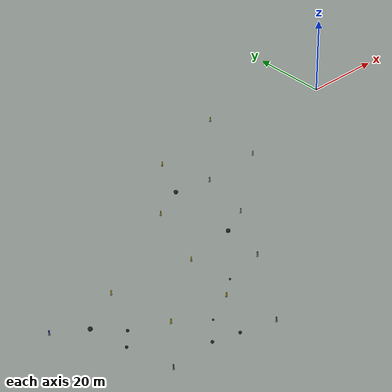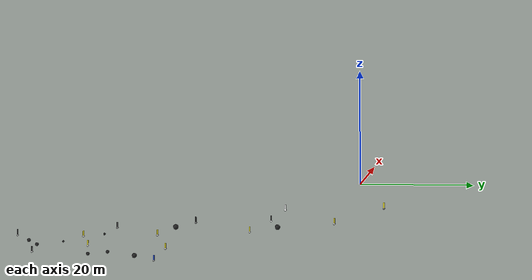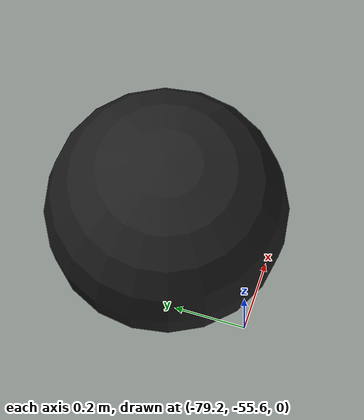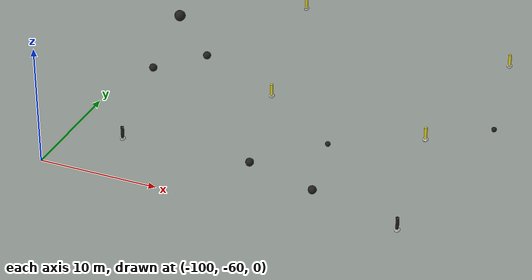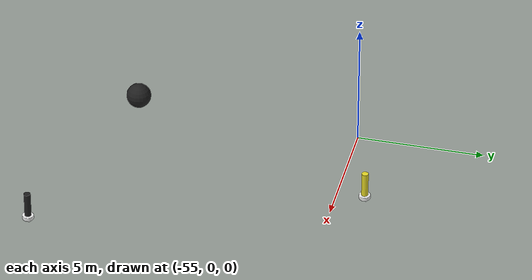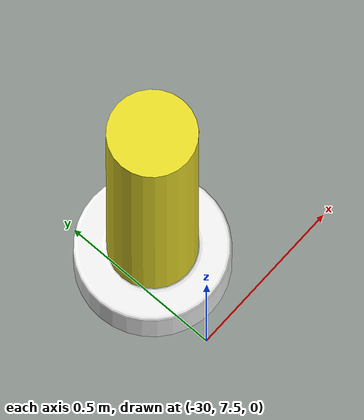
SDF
<?xml version="1.0"?>
<!-- Model for the VRX navigation course -->
<sdf version="1.6">
  <model name="vrx_navigation_course">

    <!-- Starboard_border -->
    <include>
      <name>red_bound_0</name>
      <pose>-29.8874 7.80274 0 0 -0 0</pose>
      <uri>model://yellow_totem</uri>
    </include>

    <include>
      <name>red_bound_1</name>
      <pose>-51.4227 1.0515 0 0 -0 0</pose>
      <uri>model://yellow_totem</uri>
    </include>

    <include>
      <name>red_bound_2</name>
      <pose>-64.574 -13.7242 0 0 -0 0</pose>
      <uri>model://yellow_totem</uri>
    </include>

    <include>
      <name>red_bound_3</name>
      <pose>-70.5798 -30.9289 0 0 -0 0</pose>
      <uri>model://yellow_totem</uri>
    </include>

    <include>
      <name>red_bound_4</name>
      <pose>-73.2084 -44.9953 0 0 -0 0</pose>
      <uri>model://yellow_totem</uri>
    </include>

    <include>
      <name>red_bound_5</name>
      <pose>-87.3051 -43.4804 0 0 -0 0</pose>
      <uri>model://yellow_totem</uri>
    </include>

    <include>
      <name>red_bound_6</name>
      <pose>-90.539 -28.0283 0 0 -0 0</pose>
      <uri>model://yellow_totem</uri>
    </include>

    <!-- Port_border -->
    <include>
      <name>green_bound_0</name>
      <pose>-32.2914 -10.0761 -0.2 0 -0 0</pose>
      <uri>model://surmark46104</uri>
    </include>

    <include>
      <name>green_bound_1</name>
      <pose>-47.3915 -11.2422 -0.2 0 -0 0</pose>
      <uri>model://black_totem</uri>
    </include>

    <include>
      <name>green_bound_2</name>
      <pose>-50.4509 -25.1164 -0.2 0 -0 0</pose>
      <uri>model://black_totem</uri>
    </include>

    <include>
      <name>green_bound_3</name>
      <pose>-58.7734 -39.351 -0.2 0 -0 0</pose>
      <uri>model://black_totem</uri>
    </include>

    <include>
      <name>green_bound_4</name>
      <pose>-70.9557 -57.7238 -0.2 0 -0 0</pose>
      <uri>model://black_totem</uri>
    </include>

    <include>
      <name>green_bound_5</name>
      <pose>-95.8278 -54.0979 -0.2 0 -0 0</pose>
      <uri>model://black_totem</uri>
    </include>

    <include>
      <name>green_bound_6</name>
      <pose>-107.643 -29.1729 -0.2 0 -0 0</pose>
      <uri>model://blue_totem</uri>
    </include>

    <!-- Obstacles -->
    <include>
      <name>obstacle_1</name>
      <pose>-57.283 -28.3719 -0.2 0 -0 0</pose>
      <uri>model://polyform_a7</uri>
    </include>

    <include>
      <name>obstacle_2</name>
      <pose>-68.6471 -41.2087 -0.2 0 -0 0</pose>
      <uri>model://polyform_a3</uri>
    </include>

    <include>
      <name>obstacle_3</name>
      <pose>-80.2333 -48.5559 -0.2 0 -0 0</pose>
      <uri>model://polyform_a3</uri>
    </include>

    <include>
      <name>obstacle_4</name>
      <pose>-78.842 -55.2626 -0.2 0 -0 0</pose>
      <uri>model://polyform_a5</uri>
    </include>

    <include>
      <name>obstacle_5</name>
      <pose>-84.9105 -53.4974 -0.2 0 -0 0</pose>
      <uri>model://polyform_a5</uri>
    </include>

    <include>
      <name>obstacle_6</name>
      <pose>-98.5759 -42.8883 -0.2 0 -0 0</pose>
      <uri>model://polyform_a5</uri>
    </include>

    <include>
      <name>obstacle_7</name>
      <pose>-95.2334 -39.1624 -0.2 0 -0 0</pose>
      <uri>model://polyform_a5</uri>
    </include>

    <include>
      <name>obstacle_8</name>
      <pose>-100.506 -33.524 -0.2 0 -0 0</pose>
      <uri>model://polyform_a7</uri>
    </include>

    <include>
      <name>obstacle_9</name>
      <pose>-56.0734 -9.21053 -0.2 0 -0 0</pose>
      <uri>model://polyform_a7</uri>
    </include>
  </model>
</sdf>

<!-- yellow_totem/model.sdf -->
<sdf version="1.6">
  <model name="yellow_totem">
    <link name="link">
      <inertial>
        <pose>0 0 -2 0 0 0</pose>
        <!-- Mass determined based on buoyancy geometry so object
             floats at mid-point of sphere -->
        <mass>25</mass>
        <!-- Mark only - based on cylinder -->
        <inertia>
          <ixx>1.0</ixx>
          <ixy>0</ixy>
          <ixz>0</ixz>
          <iyy>1.0</iyy>
          <iyz>0</iyz>
          <izz>0.1</izz>
        </inertia>
      </inertial>
      <collision name="collision_inner">
        <pose>0 0 0.367 0 0 0</pose>
        <geometry>
          <cylinder>
            <radius>0.13</radius>
            <length>1.25</length>
          </cylinder>
        </geometry>
      </collision>
      <collision name="collision_outer">
        <pose>0 0 -0.075 0 0 0</pose>
        <geometry>
          <cylinder>
            <radius>0.23</radius>
            <length>0.16</length>
          </cylinder>
        </geometry>
      </collision>
      <visual name="visual">
        <geometry>
          <mesh><uri>model://surmark46104/mesh/surmark46104.dae</uri></mesh>
        </geometry>
        <material>
          <script>
            <uri>file://media/materials/scripts/gazebo.material</uri>
            <name>Gazebo/White</name>
          </script>
        </material>
      </visual>
      <visual name="cover_visual">
        <pose>0 0 0.492 0 0 0</pose>
        <geometry>
          <cylinder>
            <radius>0.131</radius>
            <length>1</length>
          </cylinder>
        </geometry>
        <material>
          <script>
            <uri>file://media/materials/scripts/gazebo.material</uri>
            <name>Gazebo/Yellow</name>
          </script>
        </material>
      </visual>
    </link>
    <plugin name="BuoyancyPlugin" filename="libbuoyancy_gazebo_plugin.so">
      <wave_model>ocean_waves</wave_model>
      <fluid_density>1000</fluid_density>
      <fluid_level>0.0</fluid_level>
      <linear_drag>25.0</linear_drag>
      <angular_drag>2.0</angular_drag>
      <buoyancy name="buoyancy_sphere">
        <link_name>link</link_name>
        <pose>0 0 -0.08 0 0 0</pose>
        <geometry>
          <sphere>
            <radius>0.23</radius>
          </sphere>
        </geometry>
      </buoyancy>
    </plugin>
  </model>
</sdf>

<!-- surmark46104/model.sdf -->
<sdf version="1.6">
  <model name="surmark46104">
    <link name="link">
      <inertial>
        <pose>0 0 -2 0 0 0</pose>
        <!-- Mass determined based on buoyancy geometry so object
             floats at mid-point of sphere -->
        <mass>25</mass>
        <!-- Mark only - based on cylinder -->
        <inertia>
          <ixx>1.0</ixx>
          <ixy>0</ixy>
          <ixz>0</ixz>
          <iyy>1.0</iyy>
          <iyz>0</iyz>
          <izz>0.1</izz>
        </inertia>
      </inertial>
      <collision name="collision_inner">
        <pose>0 0 0.367 0 0 0</pose>
        <geometry>
          <cylinder>
            <radius>0.13</radius>
            <length>1.25</length>
          </cylinder>
        </geometry>
      </collision>
      <collision name="collision_outer">
        <pose>0 0 -0.075 0 0 0</pose>
        <geometry>
          <cylinder>
            <radius>0.23</radius>
            <length>0.16</length>
          </cylinder>
        </geometry>
      </collision>
      <visual name="visual">
        <geometry>
	        <mesh><uri>model://surmark46104/mesh/surmark46104.dae</uri></mesh>
        </geometry>
        <material>
          <script>
            <uri>file://media/materials/scripts/gazebo.material</uri>
            <name>Gazebo/White</name>
          </script>
        </material>
      </visual>
    </link>
    <plugin name="BuoyancyPlugin" filename="libbuoyancy_gazebo_plugin.so">
      <wave_model>ocean_waves</wave_model>
      <fluid_density>1000</fluid_density>
      <fluid_level>0.0</fluid_level>
      <linear_drag>25.0</linear_drag>
      <angular_drag>2.0</angular_drag>
      <buoyancy name="buoyancy_sphere">
        <link_name>link</link_name>
        <pose>0 0 -0.08 0 0 0</pose>
        <geometry>
          <sphere>
            <radius>0.23</radius>
          </sphere>
        </geometry>
      </buoyancy>
    </plugin>
  </model>
</sdf>

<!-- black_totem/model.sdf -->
<sdf version="1.6">
  <model name="black_totem">
    <link name="link">
      <inertial>
        <pose>0 0 -2 0 0 0</pose>
        <!-- Mass determined based on buoyancy geometry so object
             floats at mid-point of sphere -->
        <mass>25</mass>
        <!-- Mark only - based on cylinder -->
        <inertia>
          <ixx>1.0</ixx>
          <ixy>0</ixy>
          <ixz>0</ixz>
          <iyy>1.0</iyy>
          <iyz>0</iyz>
          <izz>0.1</izz>
        </inertia>
      </inertial>
      <collision name="collision_inner">
        <pose>0 0 0.367 0 0 0</pose>
        <geometry>
          <cylinder>
            <radius>0.13</radius>
            <length>1.25</length>
          </cylinder>
        </geometry>
      </collision>
      <collision name="collision_outer">
        <pose>0 0 -0.075 0 0 0</pose>
        <geometry>
          <cylinder>
            <radius>0.23</radius>
            <length>0.16</length>
          </cylinder>
        </geometry>
      </collision>
      <visual name="visual">
        <geometry>
          <mesh><uri>model://surmark46104/mesh/surmark46104.dae</uri></mesh>
        </geometry>
        <material>
          <script>
            <uri>file://media/materials/scripts/gazebo.material</uri>
            <name>Gazebo/White</name>
          </script>
        </material>
      </visual>
      <visual name="cover_visual">
        <pose>0 0 0.492 0 0 0</pose>
        <geometry>
          <cylinder>
            <radius>0.131</radius>
            <length>1</length>
          </cylinder>
        </geometry>
        <material>
          <script>
            <uri>file://media/materials/scripts/gazebo.material</uri>
            <name>Gazebo/Black</name>
          </script>
        </material>
      </visual>
    </link>
    <plugin name="BuoyancyPlugin" filename="libbuoyancy_gazebo_plugin.so">
      <wave_model>ocean_waves</wave_model>
      <fluid_density>1000</fluid_density>
      <fluid_level>0.0</fluid_level>
      <linear_drag>25.0</linear_drag>
      <angular_drag>2.0</angular_drag>
      <buoyancy name="buoyancy_sphere">
        <link_name>link</link_name>
        <pose>0 0 -0.08 0 0 0</pose>
        <geometry>
          <sphere>
            <radius>0.23</radius>
          </sphere>
        </geometry>
      </buoyancy>
    </plugin>
  </model>
</sdf>

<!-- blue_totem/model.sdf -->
<sdf version="1.6">
  <model name="blue_totem">
    <link name="link">
      <inertial>
        <pose>0 0 -2 0 0 0</pose>
        <!-- Mass determined based on buoyancy geometry so object
             floats at mid-point of sphere -->
        <mass>25</mass>
        <!-- Mark only - based on cylinder -->
        <inertia>
          <ixx>1.0</ixx>
          <ixy>0</ixy>
          <ixz>0</ixz>
          <iyy>1.0</iyy>
          <iyz>0</iyz>
          <izz>0.1</izz>
        </inertia>
      </inertial>
      <collision name="collision_inner">
        <pose>0 0 0.367 0 0 0</pose>
        <geometry>
          <cylinder>
            <radius>0.13</radius>
            <length>1.25</length>
          </cylinder>
        </geometry>
      </collision>
      <collision name="collision_outer">
        <pose>0 0 -0.075 0 0 0</pose>
        <geometry>
          <cylinder>
            <radius>0.23</radius>
            <length>0.16</length>
          </cylinder>
        </geometry>
      </collision>
      <visual name="visual">
        <geometry>
          <mesh><uri>model://surmark46104/mesh/surmark46104.dae</uri></mesh>
        </geometry>
        <material>
          <script>
            <uri>file://media/materials/scripts/gazebo.material</uri>
            <name>Gazebo/White</name>
          </script>
        </material>
      </visual>
      <visual name="cover_visual">
        <pose>0 0 0.492 0 0 0</pose>
        <geometry>
          <cylinder>
            <radius>0.131</radius>
            <length>1</length>
          </cylinder>
        </geometry>
        <material>
          <script>
            <uri>file://media/materials/scripts/gazebo.material</uri>
            <name>Gazebo/Blue</name>
          </script>
        </material>
      </visual>
    </link>
    <plugin name="BuoyancyPlugin" filename="libbuoyancy_gazebo_plugin.so">
      <wave_model>ocean_waves</wave_model>
      <fluid_density>1000</fluid_density>
      <fluid_level>0.0</fluid_level>
      <linear_drag>25.0</linear_drag>
      <angular_drag>2.0</angular_drag>
      <buoyancy name="buoyancy_sphere">
        <link_name>link</link_name>
        <pose>0 0 -0.08 0 0 0</pose>
        <geometry>
          <sphere>
            <radius>0.23</radius>
          </sphere>
        </geometry>
      </buoyancy>
    </plugin>
  </model>
</sdf>

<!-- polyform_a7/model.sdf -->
<sdf version="1.6">
  <!-- Reference: https://www.polyformus.com/buoys/a-series -->
  <model name="polyform_a7">
    <static>false</static>
    <pose>0 0 0 0 0 0</pose>
    <link name="base_link">
      <inertial>
        <!-- Reference: https://www.sailrite.com/PDF/Polyform-Buoys-Fenders-Accessories.pdf, page 8 -->
        <mass>24.49</mass>
      </inertial>
      <visual name="visual">
        <geometry>
          <sphere><radius>0.4955</radius></sphere>
        </geometry>
        <material>
          <script>
            <uri>file://media/materials/scripts/gazebo.material</uri>
            <name>Gazebo/Black</name>
          </script>
        </material>
      </visual>
      <collision name="collision">
        <geometry>
          <sphere><radius>0.4955</radius></sphere>
        </geometry>
      </collision>
    </link>

    <plugin name="BuoyancyPlugin" filename="libbuoyancy_gazebo_plugin.so">
      <wave_model>ocean_waves</wave_model>
      <fluid_density>1000</fluid_density>
      <fluid_level>0.0</fluid_level>
      <linear_drag>20.0</linear_drag>
      <angular_drag>2.0</angular_drag>
      <buoyancy name="buoyancy">
        <link_name>base_link</link_name>
        <geometry>
          <sphere><radius>0.4955</radius></sphere>
        </geometry>
      </buoyancy>
    </plugin>

  </model>
</sdf>

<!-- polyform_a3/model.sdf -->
<sdf version="1.6">
  <!-- Reference: https://www.polyformus.com/buoys/a-series -->
  <model name="polyform_a3">
    <static>false</static>
    <pose>0 0 0 0 0 0</pose>
    <link name="base_link">
      <inertial>
        <!-- Reference: https://www.sailrite.com/PDF/Polyform-Buoys-Fenders-Accessories.pdf, page 8 -->
        <mass>3.1</mass>
      </inertial>
      <visual name="visual">
        <geometry>
          <sphere><radius>0.216</radius></sphere>
        </geometry>
        <material>
          <script>
            <uri>file://media/materials/scripts/gazebo.material</uri>
            <name>Gazebo/Black</name>
          </script>
        </material>
      </visual>
      <collision name="collision">
        <geometry>
          <sphere><radius>0.216</radius></sphere>
        </geometry>
      </collision>
    </link>

    <plugin name="BuoyancyPlugin" filename="libbuoyancy_gazebo_plugin.so">
      <wave_model>ocean_waves</wave_model>
      <fluid_density>1000</fluid_density>
      <fluid_level>0.0</fluid_level>
      <linear_drag>20.0</linear_drag>
      <angular_drag>2.0</angular_drag>
      <buoyancy name="buoyancy">
        <link_name>base_link</link_name>
        <geometry>
          <sphere><radius>0.216</radius></sphere>
        </geometry>
      </buoyancy>
    </plugin>

  </model>
</sdf>

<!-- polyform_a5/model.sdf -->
<sdf version="1.6">
  <!-- Reference: https://www.polyformus.com/buoys/a-series -->
  <model name="polyform_a5">
    <static>false</static>
    <pose>0 0 0 0 0 0</pose>
    <link name="base_link">
      <inertial>
        <!-- Reference: https://www.sailrite.com/PDF/Polyform-Buoys-Fenders-Accessories.pdf, page 8 -->
        <mass>8.98</mass>
      </inertial>
      <visual name="visual">
        <geometry>
          <sphere><radius>0.343</radius></sphere>
        </geometry>
        <material>
          <script>
            <uri>file://media/materials/scripts/gazebo.material</uri>
            <name>Gazebo/Black</name>
          </script>
        </material>
      </visual>
      <collision name="collision">
        <geometry>
          <sphere><radius>0.343</radius></sphere>
        </geometry>
      </collision>
    </link>

    <plugin name="BuoyancyPlugin" filename="libbuoyancy_gazebo_plugin.so">
      <wave_model>ocean_waves</wave_model>
      <fluid_density>1000</fluid_density>
      <fluid_level>0.0</fluid_level>
      <linear_drag>20.0</linear_drag>
      <angular_drag>2.0</angular_drag>
      <buoyancy name="buoyancy">
        <link_name>base_link</link_name>
        <geometry>
          <sphere><radius>0.343</radius></sphere>
        </geometry>
      </buoyancy>
    </plugin>

  </model>
</sdf>
